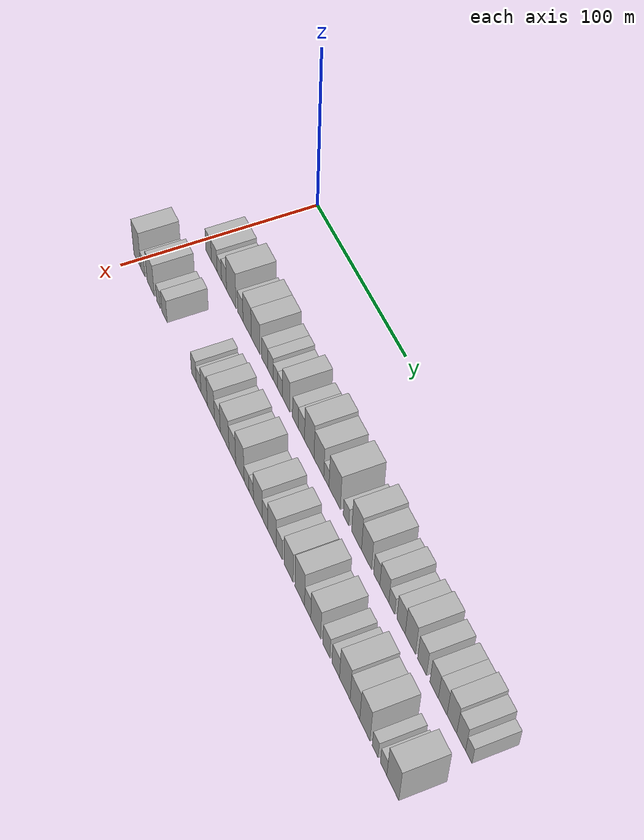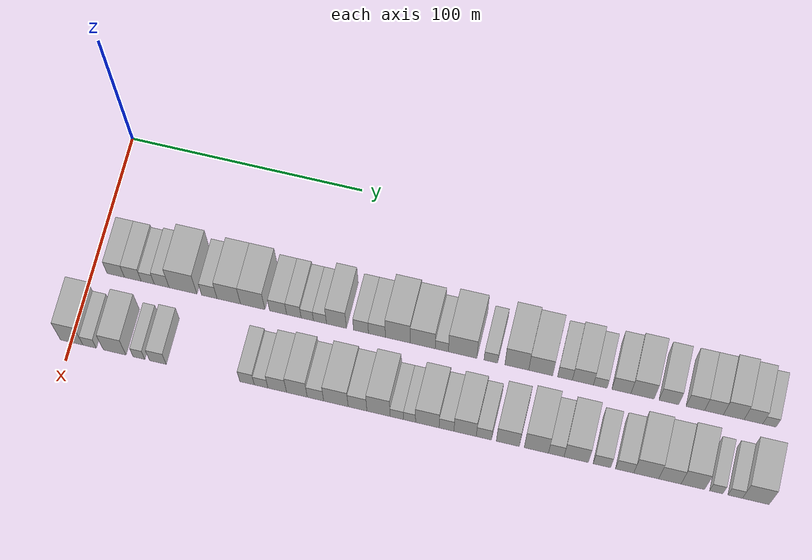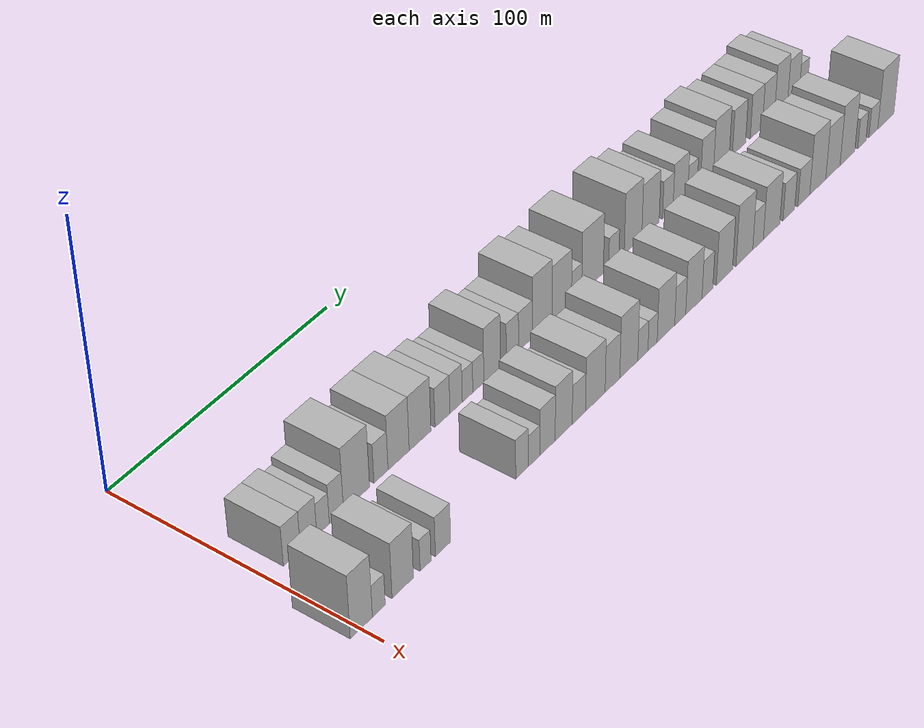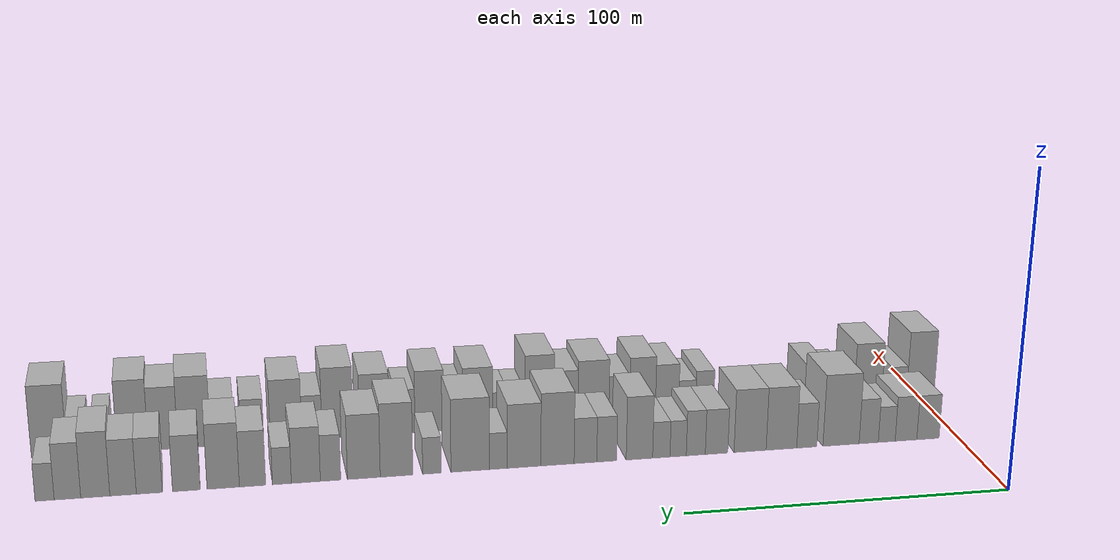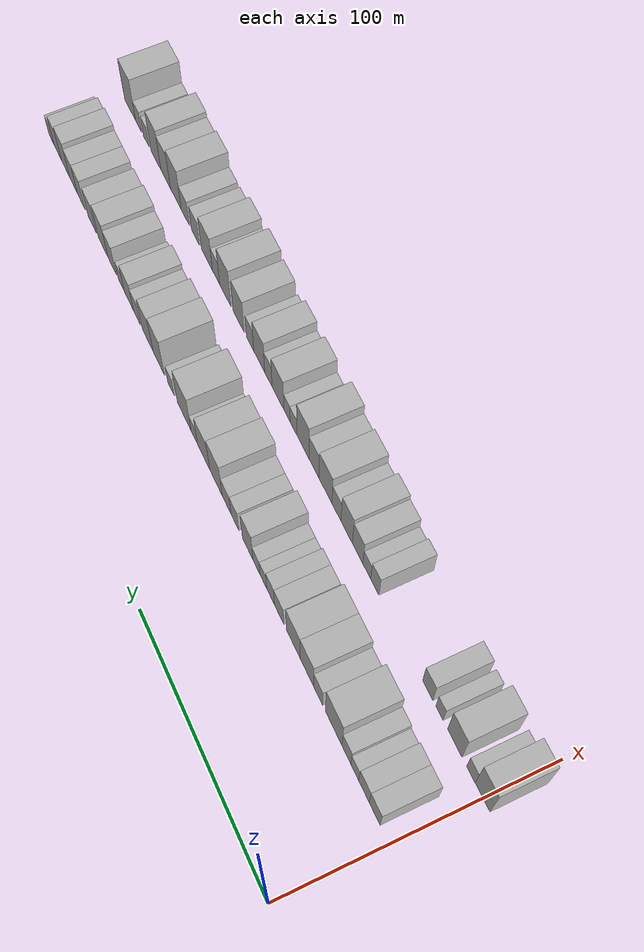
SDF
<sdf version="1.6">
 <world name="default">
  <model name="building_31">
   <static>1</static>
   <pose>50.0000 9.9251 0 0.000000 0.000000 0.000000</pose>
   <link name="link">
    <pose>0 0 7.50 0 0 0</pose>
    <collision name="collision"><geometry><box><size>20.0000 7.4453 15.0000</size></box></geometry></collision>
    <visual name="visual">
     <cast_shadows>0</cast_shadows>
     <geometry><box><size>20.0000 7.4453 15.0000</size></box></geometry>
     <material>
      <script>
       <uri>model://HANNAS_wall/materials/scripts</uri>
       <uri>model://HANNAS_wall/materials/textures</uri>
       <name>vrc/HANNAS_wall</name>
      </script>
     </material>
    </visual>
   </link>
  </model>
  <model name="building_32">
   <static>1</static>
   <pose>50.0000 17.2544 0 0.000000 0.000000 0.000000</pose>
   <link name="link">
    <pose>0 0 7.50 0 0 0</pose>
    <collision name="collision"><geometry><box><size>20.0000 7.2133 15.0000</size></box></geometry></collision>
    <visual name="visual">
     <cast_shadows>0</cast_shadows>
     <geometry><box><size>20.0000 7.2133 15.0000</size></box></geometry>
     <material>
      <script>
       <uri>model://HANNAS_wall/materials/scripts</uri>
       <uri>model://HANNAS_wall/materials/textures</uri>
       <name>vrc/HANNAS_wall</name>
      </script>
     </material>
    </visual>
   </link>
  </model>
  <model name="building_33">
   <static>1</static>
   <pose>50.0000 23.6577 0 0.000000 0.000000 0.000000</pose>
   <link name="link">
    <pose>0 0 6.00 0 0 0</pose>
    <collision name="collision"><geometry><box><size>20.0000 5.5933 12.0000</size></box></geometry></collision>
    <visual name="visual">
     <cast_shadows>0</cast_shadows>
     <geometry><box><size>20.0000 5.5933 12.0000</size></box></geometry>
     <material>
      <script>
       <uri>model://HANNAS_wall/materials/scripts</uri>
       <uri>model://HANNAS_wall/materials/textures</uri>
       <name>vrc/HANNAS_wall</name>
      </script>
     </material>
    </visual>
   </link>
  </model>
  <model name="building_34">
   <static>1</static>
   <pose>50.0000 29.6314 0 0.000000 0.000000 0.000000</pose>
   <link name="link">
    <pose>0 0 7.50 0 0 0</pose>
    <collision name="collision"><geometry><box><size>20.0000 6.3542 15.0000</size></box></geometry></collision>
    <visual name="visual">
     <cast_shadows>0</cast_shadows>
     <geometry><box><size>20.0000 6.3542 15.0000</size></box></geometry>
     <material>
      <script>
       <uri>model://HANNAS_wall/materials/scripts</uri>
       <uri>model://HANNAS_wall/materials/textures</uri>
       <name>vrc/HANNAS_wall</name>
      </script>
     </material>
    </visual>
   </link>
  </model>
  <model name="building_35">
   <static>1</static>
   <pose>50.0000 38.7685 0 0.000000 0.000000 0.000000</pose>
   <link name="link">
    <pose>0 0 12.00 0 0 0</pose>
    <collision name="collision"><geometry><box><size>20.0000 11.9199 24.0000</size></box></geometry></collision>
    <visual name="visual">
     <cast_shadows>0</cast_shadows>
     <geometry><box><size>20.0000 11.9199 24.0000</size></box></geometry>
     <material>
      <script>
       <uri>model://HANNAS_wall/materials/scripts</uri>
       <uri>model://HANNAS_wall/materials/textures</uri>
       <name>vrc/HANNAS_wall</name>
      </script>
     </material>
    </visual>
   </link>
  </model>
  <model name="building_36">
   <static>1</static>
   <pose>50.0000 50.0212 0 0.000000 0.000000 0.000000</pose>
   <link name="link">
    <pose>0 0 7.50 0 0 0</pose>
    <collision name="collision"><geometry><box><size>20.0000 6.5854 15.0000</size></box></geometry></collision>
    <visual name="visual">
     <cast_shadows>0</cast_shadows>
     <geometry><box><size>20.0000 6.5854 15.0000</size></box></geometry>
     <material>
      <script>
       <uri>model://HANNAS_wall/materials/scripts</uri>
       <uri>model://HANNAS_wall/materials/textures</uri>
       <name>vrc/HANNAS_wall</name>
      </script>
     </material>
    </visual>
   </link>
  </model>
  <model name="building_37">
   <static>1</static>
   <pose>50.0000 58.3000 0 0.000000 0.000000 0.000000</pose>
   <link name="link">
    <pose>0 0 10.50 0 0 0</pose>
    <collision name="collision"><geometry><box><size>20.0000 9.9722 21.0000</size></box></geometry></collision>
    <visual name="visual">
     <cast_shadows>0</cast_shadows>
     <geometry><box><size>20.0000 9.9722 21.0000</size></box></geometry>
     <material>
      <script>
       <uri>model://HANNAS_wall/materials/scripts</uri>
       <uri>model://HANNAS_wall/materials/textures</uri>
       <name>vrc/HANNAS_wall</name>
      </script>
     </material>
    </visual>
   </link>
  </model>
  <model name="building_38">
   <static>1</static>
   <pose>50.0000 68.4971 0 0.000000 0.000000 0.000000</pose>
   <link name="link">
    <pose>0 0 10.50 0 0 0</pose>
    <collision name="collision"><geometry><box><size>20.0000 10.4220 21.0000</size></box></geometry></collision>
    <visual name="visual">
     <cast_shadows>0</cast_shadows>
     <geometry><box><size>20.0000 10.4220 21.0000</size></box></geometry>
     <material>
      <script>
       <uri>model://HANNAS_wall/materials/scripts</uri>
       <uri>model://HANNAS_wall/materials/textures</uri>
       <name>vrc/HANNAS_wall</name>
      </script>
     </material>
    </visual>
   </link>
  </model>
  <model name="building_39">
   <static>1</static>
   <pose>50.0000 79.3387 0 0.000000 0.000000 0.000000</pose>
   <link name="link">
    <pose>0 0 7.50 0 0 0</pose>
    <collision name="collision"><geometry><box><size>20.0000 7.2612 15.0000</size></box></geometry></collision>
    <visual name="visual">
     <cast_shadows>0</cast_shadows>
     <geometry><box><size>20.0000 7.2612 15.0000</size></box></geometry>
     <material>
      <script>
       <uri>model://HANNAS_wall/materials/scripts</uri>
       <uri>model://HANNAS_wall/materials/textures</uri>
       <name>vrc/HANNAS_wall</name>
      </script>
     </material>
    </visual>
   </link>
  </model>
  <model name="building_40">
   <static>1</static>
   <pose>50.0000 86.0301 0 0.000000 0.000000 0.000000</pose>
   <link name="link">
    <pose>0 0 7.50 0 0 0</pose>
    <collision name="collision"><geometry><box><size>20.0000 6.1216 15.0000</size></box></geometry></collision>
    <visual name="visual">
     <cast_shadows>0</cast_shadows>
     <geometry><box><size>20.0000 6.1216 15.0000</size></box></geometry>
     <material>
      <script>
       <uri>model://HANNAS_wall/materials/scripts</uri>
       <uri>model://HANNAS_wall/materials/textures</uri>
       <name>vrc/HANNAS_wall</name>
      </script>
     </material>
    </visual>
   </link>
  </model>
  <model name="building_41">
   <static>1</static>
   <pose>50.0000 91.6999 0 0.000000 0.000000 0.000000</pose>
   <link name="link">
    <pose>0 0 6.00 0 0 0</pose>
    <collision name="collision"><geometry><box><size>20.0000 5.2180 12.0000</size></box></geometry></collision>
    <visual name="visual">
     <cast_shadows>0</cast_shadows>
     <geometry><box><size>20.0000 5.2180 12.0000</size></box></geometry>
     <material>
      <script>
       <uri>model://HANNAS_wall/materials/scripts</uri>
       <uri>model://HANNAS_wall/materials/textures</uri>
       <name>vrc/HANNAS_wall</name>
      </script>
     </material>
    </visual>
   </link>
  </model>
  <model name="building_42">
   <static>1</static>
   <pose>50.0000 97.0927 0 0.000000 0.000000 0.000000</pose>
   <link name="link">
    <pose>0 0 6.00 0 0 0</pose>
    <collision name="collision"><geometry><box><size>20.0000 5.5674 12.0000</size></box></geometry></collision>
    <visual name="visual">
     <cast_shadows>0</cast_shadows>
     <geometry><box><size>20.0000 5.5674 12.0000</size></box></geometry>
     <material>
      <script>
       <uri>model://HANNAS_wall/materials/scripts</uri>
       <uri>model://HANNAS_wall/materials/textures</uri>
       <name>vrc/HANNAS_wall</name>
      </script>
     </material>
    </visual>
   </link>
  </model>
  <model name="building_43">
   <static>1</static>
   <pose>50.0000 104.0828 0 0.000000 0.000000 0.000000</pose>
   <link name="link">
    <pose>0 0 10.50 0 0 0</pose>
    <collision name="collision"><geometry><box><size>20.0000 8.4127 21.0000</size></box></geometry></collision>
    <visual name="visual">
     <cast_shadows>0</cast_shadows>
     <geometry><box><size>20.0000 8.4127 21.0000</size></box></geometry>
     <material>
      <script>
       <uri>model://HANNAS_wall/materials/scripts</uri>
       <uri>model://HANNAS_wall/materials/textures</uri>
       <name>vrc/HANNAS_wall</name>
      </script>
     </material>
    </visual>
   </link>
  </model>
  <model name="building_44">
   <static>1</static>
   <pose>50.0000 114.4415 0 0.000000 0.000000 0.000000</pose>
   <link name="link">
    <pose>0 0 7.50 0 0 0</pose>
    <collision name="collision"><geometry><box><size>20.0000 6.3048 15.0000</size></box></geometry></collision>
    <visual name="visual">
     <cast_shadows>0</cast_shadows>
     <geometry><box><size>20.0000 6.3048 15.0000</size></box></geometry>
     <material>
      <script>
       <uri>model://HANNAS_wall/materials/scripts</uri>
       <uri>model://HANNAS_wall/materials/textures</uri>
       <name>vrc/HANNAS_wall</name>
      </script>
     </material>
    </visual>
   </link>
  </model>
  <model name="building_45">
   <static>1</static>
   <pose>50.0000 121.1762 0 0.000000 0.000000 0.000000</pose>
   <link name="link">
    <pose>0 0 7.50 0 0 0</pose>
    <collision name="collision"><geometry><box><size>20.0000 7.1645 15.0000</size></box></geometry></collision>
    <visual name="visual">
     <cast_shadows>0</cast_shadows>
     <geometry><box><size>20.0000 7.1645 15.0000</size></box></geometry>
     <material>
      <script>
       <uri>model://HANNAS_wall/materials/scripts</uri>
       <uri>model://HANNAS_wall/materials/textures</uri>
       <name>vrc/HANNAS_wall</name>
      </script>
     </material>
    </visual>
   </link>
  </model>
  <model name="building_46">
   <static>1</static>
   <pose>50.0000 129.9872 0 0.000000 0.000000 0.000000</pose>
   <link name="link">
    <pose>0 0 12.00 0 0 0</pose>
    <collision name="collision"><geometry><box><size>20.0000 10.4575 24.0000</size></box></geometry></collision>
    <visual name="visual">
     <cast_shadows>0</cast_shadows>
     <geometry><box><size>20.0000 10.4575 24.0000</size></box></geometry>
     <material>
      <script>
       <uri>model://HANNAS_wall/materials/scripts</uri>
       <uri>model://HANNAS_wall/materials/textures</uri>
       <name>vrc/HANNAS_wall</name>
      </script>
     </material>
    </visual>
   </link>
  </model>
  <model name="building_47">
   <static>1</static>
   <pose>50.0000 140.4449 0 0.000000 0.000000 0.000000</pose>
   <link name="link">
    <pose>0 0 10.50 0 0 0</pose>
    <collision name="collision"><geometry><box><size>20.0000 10.4578 21.0000</size></box></geometry></collision>
    <visual name="visual">
     <cast_shadows>0</cast_shadows>
     <geometry><box><size>20.0000 10.4578 21.0000</size></box></geometry>
     <material>
      <script>
       <uri>model://HANNAS_wall/materials/scripts</uri>
       <uri>model://HANNAS_wall/materials/textures</uri>
       <name>vrc/HANNAS_wall</name>
      </script>
     </material>
    </visual>
   </link>
  </model>
  <model name="building_48">
   <static>1</static>
   <pose>50.0000 148.4528 0 0.000000 0.000000 0.000000</pose>
   <link name="link">
    <pose>0 0 6.00 0 0 0</pose>
    <collision name="collision"><geometry><box><size>20.0000 5.5581 12.0000</size></box></geometry></collision>
    <visual name="visual">
     <cast_shadows>0</cast_shadows>
     <geometry><box><size>20.0000 5.5581 12.0000</size></box></geometry>
     <material>
      <script>
       <uri>model://HANNAS_wall/materials/scripts</uri>
       <uri>model://HANNAS_wall/materials/textures</uri>
       <name>vrc/HANNAS_wall</name>
      </script>
     </material>
    </visual>
   </link>
  </model>
  <model name="building_49">
   <static>1</static>
   <pose>50.0000 157.2001 0 0.000000 0.000000 0.000000</pose>
   <link name="link">
    <pose>0 0 12.00 0 0 0</pose>
    <collision name="collision"><geometry><box><size>20.0000 11.9365 24.0000</size></box></geometry></collision>
    <visual name="visual">
     <cast_shadows>0</cast_shadows>
     <geometry><box><size>20.0000 11.9365 24.0000</size></box></geometry>
     <material>
      <script>
       <uri>model://HANNAS_wall/materials/scripts</uri>
       <uri>model://HANNAS_wall/materials/textures</uri>
       <name>vrc/HANNAS_wall</name>
      </script>
     </material>
    </visual>
   </link>
  </model>
  <model name="building_50">
   <static>1</static>
   <pose>50.0000 169.0229 0 0.000000 0.000000 0.000000</pose>
   <link name="link">
    <pose>0 0 6.00 0 0 0</pose>
    <collision name="collision"><geometry><box><size>20.0000 5.7092 12.0000</size></box></geometry></collision>
    <visual name="visual">
     <cast_shadows>0</cast_shadows>
     <geometry><box><size>20.0000 5.7092 12.0000</size></box></geometry>
     <material>
      <script>
       <uri>model://HANNAS_wall/materials/scripts</uri>
       <uri>model://HANNAS_wall/materials/textures</uri>
       <name>vrc/HANNAS_wall</name>
      </script>
     </material>
    </visual>
   </link>
  </model>
  <model name="building_51">
   <static>1</static>
   <pose>50.0000 179.8717 0 0.000000 0.000000 0.000000</pose>
   <link name="link">
    <pose>0 0 12.00 0 0 0</pose>
    <collision name="collision"><geometry><box><size>20.0000 9.9882 24.0000</size></box></geometry></collision>
    <visual name="visual">
     <cast_shadows>0</cast_shadows>
     <geometry><box><size>20.0000 9.9882 24.0000</size></box></geometry>
     <material>
      <script>
       <uri>model://HANNAS_wall/materials/scripts</uri>
       <uri>model://HANNAS_wall/materials/textures</uri>
       <name>vrc/HANNAS_wall</name>
      </script>
     </material>
    </visual>
   </link>
  </model>
  <model name="building_52">
   <static>1</static>
   <pose>50.0000 189.8751 0 0.000000 0.000000 0.000000</pose>
   <link name="link">
    <pose>0 0 10.50 0 0 0</pose>
    <collision name="collision"><geometry><box><size>20.0000 10.0186 21.0000</size></box></geometry></collision>
    <visual name="visual">
     <cast_shadows>0</cast_shadows>
     <geometry><box><size>20.0000 10.0186 21.0000</size></box></geometry>
     <material>
      <script>
       <uri>model://HANNAS_wall/materials/scripts</uri>
       <uri>model://HANNAS_wall/materials/textures</uri>
       <name>vrc/HANNAS_wall</name>
      </script>
     </material>
    </visual>
   </link>
  </model>
  <model name="building_53">
   <static>1</static>
   <pose>50.0000 199.9680 0 0.000000 0.000000 0.000000</pose>
   <link name="link">
    <pose>0 0 7.50 0 0 0</pose>
    <collision name="collision"><geometry><box><size>20.0000 6.1673 15.0000</size></box></geometry></collision>
    <visual name="visual">
     <cast_shadows>0</cast_shadows>
     <geometry><box><size>20.0000 6.1673 15.0000</size></box></geometry>
     <material>
      <script>
       <uri>model://HANNAS_wall/materials/scripts</uri>
       <uri>model://HANNAS_wall/materials/textures</uri>
       <name>vrc/HANNAS_wall</name>
      </script>
     </material>
    </visual>
   </link>
  </model>
  <model name="building_54">
   <static>1</static>
   <pose>50.0000 207.4284 0 0.000000 0.000000 0.000000</pose>
   <link name="link">
    <pose>0 0 9.00 0 0 0</pose>
    <collision name="collision"><geometry><box><size>20.0000 8.7535 18.0000</size></box></geometry></collision>
    <visual name="visual">
     <cast_shadows>0</cast_shadows>
     <geometry><box><size>20.0000 8.7535 18.0000</size></box></geometry>
     <material>
      <script>
       <uri>model://HANNAS_wall/materials/scripts</uri>
       <uri>model://HANNAS_wall/materials/textures</uri>
       <name>vrc/HANNAS_wall</name>
      </script>
     </material>
    </visual>
   </link>
  </model>
  <model name="building_55">
   <static>1</static>
   <pose>50.0000 214.6460 0 0.000000 0.000000 0.000000</pose>
   <link name="link">
    <pose>0 0 6.00 0 0 0</pose>
    <collision name="collision"><geometry><box><size>20.0000 5.6817 12.0000</size></box></geometry></collision>
    <visual name="visual">
     <cast_shadows>0</cast_shadows>
     <geometry><box><size>20.0000 5.6817 12.0000</size></box></geometry>
     <material>
      <script>
       <uri>model://HANNAS_wall/materials/scripts</uri>
       <uri>model://HANNAS_wall/materials/textures</uri>
       <name>vrc/HANNAS_wall</name>
      </script>
     </material>
    </visual>
   </link>
  </model>
  <model name="building_56">
   <static>1</static>
   <pose>50.0000 223.4304 0 0.000000 0.000000 0.000000</pose>
   <link name="link">
    <pose>0 0 9.00 0 0 0</pose>
    <collision name="collision"><geometry><box><size>20.0000 7.8871 18.0000</size></box></geometry></collision>
    <visual name="visual">
     <cast_shadows>0</cast_shadows>
     <geometry><box><size>20.0000 7.8871 18.0000</size></box></geometry>
     <material>
      <script>
       <uri>model://HANNAS_wall/materials/scripts</uri>
       <uri>model://HANNAS_wall/materials/textures</uri>
       <name>vrc/HANNAS_wall</name>
      </script>
     </material>
    </visual>
   </link>
  </model>
  <model name="building_57">
   <static>1</static>
   <pose>50.0000 232.1941 0 0.000000 0.000000 0.000000</pose>
   <link name="link">
    <pose>0 0 10.50 0 0 0</pose>
    <collision name="collision"><geometry><box><size>20.0000 9.6404 21.0000</size></box></geometry></collision>
    <visual name="visual">
     <cast_shadows>0</cast_shadows>
     <geometry><box><size>20.0000 9.6404 21.0000</size></box></geometry>
     <material>
      <script>
       <uri>model://HANNAS_wall/materials/scripts</uri>
       <uri>model://HANNAS_wall/materials/textures</uri>
       <name>vrc/HANNAS_wall</name>
      </script>
     </material>
    </visual>
   </link>
  </model>
  <model name="building_58">
   <static>1</static>
   <pose>50.0000 243.1119 0 0.000000 0.000000 0.000000</pose>
   <link name="link">
    <pose>0 0 9.00 0 0 0</pose>
    <collision name="collision"><geometry><box><size>20.0000 8.1951 18.0000</size></box></geometry></collision>
    <visual name="visual">
     <cast_shadows>0</cast_shadows>
     <geometry><box><size>20.0000 8.1951 18.0000</size></box></geometry>
     <material>
      <script>
       <uri>model://HANNAS_wall/materials/scripts</uri>
       <uri>model://HANNAS_wall/materials/textures</uri>
       <name>vrc/HANNAS_wall</name>
      </script>
     </material>
    </visual>
   </link>
  </model>
  <model name="building_59">
   <static>1</static>
   <pose>50.0000 254.0424 0 0.000000 0.000000 0.000000</pose>
   <link name="link">
    <pose>0 0 9.00 0 0 0</pose>
    <collision name="collision"><geometry><box><size>20.0000 7.6658 18.0000</size></box></geometry></collision>
    <visual name="visual">
     <cast_shadows>0</cast_shadows>
     <geometry><box><size>20.0000 7.6658 18.0000</size></box></geometry>
     <material>
      <script>
       <uri>model://HANNAS_wall/materials/scripts</uri>
       <uri>model://HANNAS_wall/materials/textures</uri>
       <name>vrc/HANNAS_wall</name>
      </script>
     </material>
    </visual>
   </link>
  </model>
  <model name="building_60">
   <static>1</static>
   <pose>50.0000 261.7490 0 0.000000 0.000000 0.000000</pose>
   <link name="link">
    <pose>0 0 9.00 0 0 0</pose>
    <collision name="collision"><geometry><box><size>20.0000 7.7473 18.0000</size></box></geometry></collision>
    <visual name="visual">
     <cast_shadows>0</cast_shadows>
     <geometry><box><size>20.0000 7.7473 18.0000</size></box></geometry>
     <material>
      <script>
       <uri>model://HANNAS_wall/materials/scripts</uri>
       <uri>model://HANNAS_wall/materials/textures</uri>
       <name>vrc/HANNAS_wall</name>
      </script>
     </material>
    </visual>
   </link>
  </model>
  <model name="building_61">
   <static>1</static>
   <pose>50.0000 269.8685 0 0.000000 0.000000 0.000000</pose>
   <link name="link">
    <pose>0 0 10.50 0 0 0</pose>
    <collision name="collision"><geometry><box><size>20.0000 8.4917 21.0000</size></box></geometry></collision>
    <visual name="visual">
     <cast_shadows>0</cast_shadows>
     <geometry><box><size>20.0000 8.4917 21.0000</size></box></geometry>
     <material>
      <script>
       <uri>model://HANNAS_wall/materials/scripts</uri>
       <uri>model://HANNAS_wall/materials/textures</uri>
       <name>vrc/HANNAS_wall</name>
      </script>
     </material>
    </visual>
   </link>
  </model>
  <model name="building_62">
   <static>1</static>
   <pose>50.0000 277.9735 0 0.000000 0.000000 0.000000</pose>
   <link name="link">
    <pose>0 0 9.00 0 0 0</pose>
    <collision name="collision"><geometry><box><size>20.0000 7.7184 18.0000</size></box></geometry></collision>
    <visual name="visual">
     <cast_shadows>0</cast_shadows>
     <geometry><box><size>20.0000 7.7184 18.0000</size></box></geometry>
     <material>
      <script>
       <uri>model://HANNAS_wall/materials/scripts</uri>
       <uri>model://HANNAS_wall/materials/textures</uri>
       <name>vrc/HANNAS_wall</name>
      </script>
     </material>
    </visual>
   </link>
  </model>
  <model name="building_63">
   <static>1</static>
   <pose>50.0000 284.6000 0 0.000000 0.000000 0.000000</pose>
   <link name="link">
    <pose>0 0 6.00 0 0 0</pose>
    <collision name="collision"><geometry><box><size>20.0000 5.5346 12.0000</size></box></geometry></collision>
    <visual name="visual">
     <cast_shadows>0</cast_shadows>
     <geometry><box><size>20.0000 5.5346 12.0000</size></box></geometry>
     <material>
      <script>
       <uri>model://HANNAS_wall/materials/scripts</uri>
       <uri>model://HANNAS_wall/materials/textures</uri>
       <name>vrc/HANNAS_wall</name>
      </script>
     </material>
    </visual>
   </link>
  </model>
  <model name="building_97">
   <static>1</static>
   <pose>82.0000 0.3367 0 0.000000 0.000000 0.000000</pose>
   <link name="link">
    <pose>0 0 12.00 0 0 0</pose>
    <collision name="collision"><geometry><box><size>20.0000 9.6275 24.0000</size></box></geometry></collision>
    <visual name="visual">
     <cast_shadows>0</cast_shadows>
     <geometry><box><size>20.0000 9.6275 24.0000</size></box></geometry>
     <material>
      <script>
       <uri>model://HANNAS_wall/materials/scripts</uri>
       <uri>model://HANNAS_wall/materials/textures</uri>
       <name>vrc/HANNAS_wall</name>
      </script>
     </material>
    </visual>
   </link>
  </model>
  <model name="building_98">
   <static>1</static>
   <pose>82.0000 7.9887 0 0.000000 0.000000 0.000000</pose>
   <link name="link">
    <pose>0 0 6.00 0 0 0</pose>
    <collision name="collision"><geometry><box><size>20.0000 5.6764 12.0000</size></box></geometry></collision>
    <visual name="visual">
     <cast_shadows>0</cast_shadows>
     <geometry><box><size>20.0000 5.6764 12.0000</size></box></geometry>
     <material>
      <script>
       <uri>model://HANNAS_wall/materials/scripts</uri>
       <uri>model://HANNAS_wall/materials/textures</uri>
       <name>vrc/HANNAS_wall</name>
      </script>
     </material>
    </visual>
   </link>
  </model>
  <model name="building_99">
   <static>1</static>
   <pose>82.0000 18.6422 0 0.000000 0.000000 0.000000</pose>
   <link name="link">
    <pose>0 0 10.50 0 0 0</pose>
    <collision name="collision"><geometry><box><size>20.0000 9.6308 21.0000</size></box></geometry></collision>
    <visual name="visual">
     <cast_shadows>0</cast_shadows>
     <geometry><box><size>20.0000 9.6308 21.0000</size></box></geometry>
     <material>
      <script>
       <uri>model://HANNAS_wall/materials/scripts</uri>
       <uri>model://HANNAS_wall/materials/textures</uri>
       <name>vrc/HANNAS_wall</name>
      </script>
     </material>
    </visual>
   </link>
  </model>
  <model name="building_100">
   <static>1</static>
   <pose>82.0000 28.9468 0 0.000000 0.000000 0.000000</pose>
   <link name="link">
    <pose>0 0 6.00 0 0 0</pose>
    <collision name="collision"><geometry><box><size>20.0000 4.9784 12.0000</size></box></geometry></collision>
    <visual name="visual">
     <cast_shadows>0</cast_shadows>
     <geometry><box><size>20.0000 4.9784 12.0000</size></box></geometry>
     <material>
      <script>
       <uri>model://HANNAS_wall/materials/scripts</uri>
       <uri>model://HANNAS_wall/materials/textures</uri>
       <name>vrc/HANNAS_wall</name>
      </script>
     </material>
    </visual>
   </link>
  </model>
  <model name="building_101">
   <static>1</static>
   <pose>82.0000 36.9591 0 0.000000 0.000000 0.000000</pose>
   <link name="link">
    <pose>0 0 7.50 0 0 0</pose>
    <collision name="collision"><geometry><box><size>20.0000 7.0462 15.0000</size></box></geometry></collision>
    <visual name="visual">
     <cast_shadows>0</cast_shadows>
     <geometry><box><size>20.0000 7.0462 15.0000</size></box></geometry>
     <material>
      <script>
       <uri>model://HANNAS_wall/materials/scripts</uri>
       <uri>model://HANNAS_wall/materials/textures</uri>
       <name>vrc/HANNAS_wall</name>
      </script>
     </material>
    </visual>
   </link>
  </model>
  <model name="building_102">
   <static>1</static>
   <pose>82.0000 74.6300 0 0.000000 0.000000 0.000000</pose>
   <link name="link">
    <pose>0 0 7.50 0 0 0</pose>
    <collision name="collision"><geometry><box><size>20.0000 6.0985 15.0000</size></box></geometry></collision>
    <visual name="visual">
     <cast_shadows>0</cast_shadows>
     <geometry><box><size>20.0000 6.0985 15.0000</size></box></geometry>
     <material>
      <script>
       <uri>model://HANNAS_wall/materials/scripts</uri>
       <uri>model://HANNAS_wall/materials/textures</uri>
       <name>vrc/HANNAS_wall</name>
      </script>
     </material>
    </visual>
   </link>
  </model>
  <model name="building_103">
   <static>1</static>
   <pose>82.0000 80.5514 0 0.000000 0.000000 0.000000</pose>
   <link name="link">
    <pose>0 0 6.00 0 0 0</pose>
    <collision name="collision"><geometry><box><size>20.0000 5.7442 12.0000</size></box></geometry></collision>
    <visual name="visual">
     <cast_shadows>0</cast_shadows>
     <geometry><box><size>20.0000 5.7442 12.0000</size></box></geometry>
     <material>
      <script>
       <uri>model://HANNAS_wall/materials/scripts</uri>
       <uri>model://HANNAS_wall/materials/textures</uri>
       <name>vrc/HANNAS_wall</name>
      </script>
     </material>
    </visual>
   </link>
  </model>
  <model name="building_104">
   <static>1</static>
   <pose>82.0000 87.3263 0 0.000000 0.000000 0.000000</pose>
   <link name="link">
    <pose>0 0 9.00 0 0 0</pose>
    <collision name="collision"><geometry><box><size>20.0000 7.8056 18.0000</size></box></geometry></collision>
    <visual name="visual">
     <cast_shadows>0</cast_shadows>
     <geometry><box><size>20.0000 7.8056 18.0000</size></box></geometry>
     <material>
      <script>
       <uri>model://HANNAS_wall/materials/scripts</uri>
       <uri>model://HANNAS_wall/materials/textures</uri>
       <name>vrc/HANNAS_wall</name>
      </script>
     </material>
    </visual>
   </link>
  </model>
  <model name="building_105">
   <static>1</static>
   <pose>82.0000 95.5664 0 0.000000 0.000000 0.000000</pose>
   <link name="link">
    <pose>0 0 10.50 0 0 0</pose>
    <collision name="collision"><geometry><box><size>20.0000 8.6746 21.0000</size></box></geometry></collision>
    <visual name="visual">
     <cast_shadows>0</cast_shadows>
     <geometry><box><size>20.0000 8.6746 21.0000</size></box></geometry>
     <material>
      <script>
       <uri>model://HANNAS_wall/materials/scripts</uri>
       <uri>model://HANNAS_wall/materials/textures</uri>
       <name>vrc/HANNAS_wall</name>
      </script>
     </material>
    </visual>
   </link>
  </model>
  <model name="building_106">
   <static>1</static>
   <pose>82.0000 103.3387 0 0.000000 0.000000 0.000000</pose>
   <link name="link">
    <pose>0 0 7.50 0 0 0</pose>
    <collision name="collision"><geometry><box><size>20.0000 6.8700 15.0000</size></box></geometry></collision>
    <visual name="visual">
     <cast_shadows>0</cast_shadows>
     <geometry><box><size>20.0000 6.8700 15.0000</size></box></geometry>
     <material>
      <script>
       <uri>model://HANNAS_wall/materials/scripts</uri>
       <uri>model://HANNAS_wall/materials/textures</uri>
       <name>vrc/HANNAS_wall</name>
      </script>
     </material>
    </visual>
   </link>
  </model>
  <model name="building_107">
   <static>1</static>
   <pose>82.0000 111.8982 0 0.000000 0.000000 0.000000</pose>
   <link name="link">
    <pose>0 0 10.50 0 0 0</pose>
    <collision name="collision"><geometry><box><size>20.0000 10.2490 21.0000</size></box></geometry></collision>
    <visual name="visual">
     <cast_shadows>0</cast_shadows>
     <geometry><box><size>20.0000 10.2490 21.0000</size></box></geometry>
     <material>
      <script>
       <uri>model://HANNAS_wall/materials/scripts</uri>
       <uri>model://HANNAS_wall/materials/textures</uri>
       <name>vrc/HANNAS_wall</name>
      </script>
     </material>
    </visual>
   </link>
  </model>
  <model name="building_108">
   <static>1</static>
   <pose>82.0000 120.9257 0 0.000000 0.000000 0.000000</pose>
   <link name="link">
    <pose>0 0 9.00 0 0 0</pose>
    <collision name="collision"><geometry><box><size>20.0000 7.8059 18.0000</size></box></geometry></collision>
    <visual name="visual">
     <cast_shadows>0</cast_shadows>
     <geometry><box><size>20.0000 7.8059 18.0000</size></box></geometry>
     <material>
      <script>
       <uri>model://HANNAS_wall/materials/scripts</uri>
       <uri>model://HANNAS_wall/materials/textures</uri>
       <name>vrc/HANNAS_wall</name>
      </script>
     </material>
    </visual>
   </link>
  </model>
  <model name="building_109">
   <static>1</static>
   <pose>82.0000 129.6776 0 0.000000 0.000000 0.000000</pose>
   <link name="link">
    <pose>0 0 12.00 0 0 0</pose>
    <collision name="collision"><geometry><box><size>20.0000 9.6979 24.0000</size></box></geometry></collision>
    <visual name="visual">
     <cast_shadows>0</cast_shadows>
     <geometry><box><size>20.0000 9.6979 24.0000</size></box></geometry>
     <material>
      <script>
       <uri>model://HANNAS_wall/materials/scripts</uri>
       <uri>model://HANNAS_wall/materials/textures</uri>
       <name>vrc/HANNAS_wall</name>
      </script>
     </material>
    </visual>
   </link>
  </model>
  <model name="building_110">
   <static>1</static>
   <pose>82.0000 137.2924 0 0.000000 0.000000 0.000000</pose>
   <link name="link">
    <pose>0 0 6.00 0 0 0</pose>
    <collision name="collision"><geometry><box><size>20.0000 5.5319 12.0000</size></box></geometry></collision>
    <visual name="visual">
     <cast_shadows>0</cast_shadows>
     <geometry><box><size>20.0000 5.5319 12.0000</size></box></geometry>
     <material>
      <script>
       <uri>model://HANNAS_wall/materials/scripts</uri>
       <uri>model://HANNAS_wall/materials/textures</uri>
       <name>vrc/HANNAS_wall</name>
      </script>
     </material>
    </visual>
   </link>
  </model>
  <model name="building_111">
   <static>1</static>
   <pose>82.0000 142.5686 0 0.000000 0.000000 0.000000</pose>
   <link name="link">
    <pose>0 0 6.00 0 0 0</pose>
    <collision name="collision"><geometry><box><size>20.0000 5.0205 12.0000</size></box></geometry></collision>
    <visual name="visual">
     <cast_shadows>0</cast_shadows>
     <geometry><box><size>20.0000 5.0205 12.0000</size></box></geometry>
     <material>
      <script>
       <uri>model://HANNAS_wall/materials/scripts</uri>
       <uri>model://HANNAS_wall/materials/textures</uri>
       <name>vrc/HANNAS_wall</name>
      </script>
     </material>
    </visual>
   </link>
  </model>
  <model name="building_112">
   <static>1</static>
   <pose>82.0000 149.9698 0 0.000000 0.000000 0.000000</pose>
   <link name="link">
    <pose>0 0 10.50 0 0 0</pose>
    <collision name="collision"><geometry><box><size>20.0000 9.7818 21.0000</size></box></geometry></collision>
    <visual name="visual">
     <cast_shadows>0</cast_shadows>
     <geometry><box><size>20.0000 9.7818 21.0000</size></box></geometry>
     <material>
      <script>
       <uri>model://HANNAS_wall/materials/scripts</uri>
       <uri>model://HANNAS_wall/materials/textures</uri>
       <name>vrc/HANNAS_wall</name>
      </script>
     </material>
    </visual>
   </link>
  </model>
  <model name="building_113">
   <static>1</static>
   <pose>82.0000 157.9517 0 0.000000 0.000000 0.000000</pose>
   <link name="link">
    <pose>0 0 7.50 0 0 0</pose>
    <collision name="collision"><geometry><box><size>20.0000 6.1820 15.0000</size></box></geometry></collision>
    <visual name="visual">
     <cast_shadows>0</cast_shadows>
     <geometry><box><size>20.0000 6.1820 15.0000</size></box></geometry>
     <material>
      <script>
       <uri>model://HANNAS_wall/materials/scripts</uri>
       <uri>model://HANNAS_wall/materials/textures</uri>
       <name>vrc/HANNAS_wall</name>
      </script>
     </material>
    </visual>
   </link>
  </model>
  <model name="building_114">
   <static>1</static>
   <pose>82.0000 165.6702 0 0.000000 0.000000 0.000000</pose>
   <link name="link">
    <pose>0 0 10.50 0 0 0</pose>
    <collision name="collision"><geometry><box><size>20.0000 9.2550 21.0000</size></box></geometry></collision>
    <visual name="visual">
     <cast_shadows>0</cast_shadows>
     <geometry><box><size>20.0000 9.2550 21.0000</size></box></geometry>
     <material>
      <script>
       <uri>model://HANNAS_wall/materials/scripts</uri>
       <uri>model://HANNAS_wall/materials/textures</uri>
       <name>vrc/HANNAS_wall</name>
      </script>
     </material>
    </visual>
   </link>
  </model>
  <model name="building_115">
   <static>1</static>
   <pose>82.0000 173.4402 0 0.000000 0.000000 0.000000</pose>
   <link name="link">
    <pose>0 0 7.50 0 0 0</pose>
    <collision name="collision"><geometry><box><size>20.0000 6.2849 15.0000</size></box></geometry></collision>
    <visual name="visual">
     <cast_shadows>0</cast_shadows>
     <geometry><box><size>20.0000 6.2849 15.0000</size></box></geometry>
     <material>
      <script>
       <uri>model://HANNAS_wall/materials/scripts</uri>
       <uri>model://HANNAS_wall/materials/textures</uri>
       <name>vrc/HANNAS_wall</name>
      </script>
     </material>
    </visual>
   </link>
  </model>
  <model name="building_116">
   <static>1</static>
   <pose>82.0000 183.3391 0 0.000000 0.000000 0.000000</pose>
   <link name="link">
    <pose>0 0 10.50 0 0 0</pose>
    <collision name="collision"><geometry><box><size>20.0000 9.5129 21.0000</size></box></geometry></collision>
    <visual name="visual">
     <cast_shadows>0</cast_shadows>
     <geometry><box><size>20.0000 9.5129 21.0000</size></box></geometry>
     <material>
      <script>
       <uri>model://HANNAS_wall/materials/scripts</uri>
       <uri>model://HANNAS_wall/materials/textures</uri>
       <name>vrc/HANNAS_wall</name>
      </script>
     </material>
    </visual>
   </link>
  </model>
  <model name="building_117">
   <static>1</static>
   <pose>82.0000 195.0839 0 0.000000 0.000000 0.000000</pose>
   <link name="link">
    <pose>0 0 12.00 0 0 0</pose>
    <collision name="collision"><geometry><box><size>20.0000 9.9767 24.0000</size></box></geometry></collision>
    <visual name="visual">
     <cast_shadows>0</cast_shadows>
     <geometry><box><size>20.0000 9.9767 24.0000</size></box></geometry>
     <material>
      <script>
       <uri>model://HANNAS_wall/materials/scripts</uri>
       <uri>model://HANNAS_wall/materials/textures</uri>
       <name>vrc/HANNAS_wall</name>
      </script>
     </material>
    </visual>
   </link>
  </model>
  <model name="building_118">
   <static>1</static>
   <pose>82.0000 203.2725 0 0.000000 0.000000 0.000000</pose>
   <link name="link">
    <pose>0 0 7.50 0 0 0</pose>
    <collision name="collision"><geometry><box><size>20.0000 6.4006 15.0000</size></box></geometry></collision>
    <visual name="visual">
     <cast_shadows>0</cast_shadows>
     <geometry><box><size>20.0000 6.4006 15.0000</size></box></geometry>
     <material>
      <script>
       <uri>model://HANNAS_wall/materials/scripts</uri>
       <uri>model://HANNAS_wall/materials/textures</uri>
       <name>vrc/HANNAS_wall</name>
      </script>
     </material>
    </visual>
   </link>
  </model>
  <model name="building_119">
   <static>1</static>
   <pose>82.0000 211.4759 0 0.000000 0.000000 0.000000</pose>
   <link name="link">
    <pose>0 0 10.50 0 0 0</pose>
    <collision name="collision"><geometry><box><size>20.0000 10.0063 21.0000</size></box></geometry></collision>
    <visual name="visual">
     <cast_shadows>0</cast_shadows>
     <geometry><box><size>20.0000 10.0063 21.0000</size></box></geometry>
     <material>
      <script>
       <uri>model://HANNAS_wall/materials/scripts</uri>
       <uri>model://HANNAS_wall/materials/textures</uri>
       <name>vrc/HANNAS_wall</name>
      </script>
     </material>
    </visual>
   </link>
  </model>
  <model name="building_120">
   <static>1</static>
   <pose>82.0000 222.0751 0 0.000000 0.000000 0.000000</pose>
   <link name="link">
    <pose>0 0 7.50 0 0 0</pose>
    <collision name="collision"><geometry><box><size>20.0000 7.1920 15.0000</size></box></geometry></collision>
    <visual name="visual">
     <cast_shadows>0</cast_shadows>
     <geometry><box><size>20.0000 7.1920 15.0000</size></box></geometry>
     <material>
      <script>
       <uri>model://HANNAS_wall/materials/scripts</uri>
       <uri>model://HANNAS_wall/materials/textures</uri>
       <name>vrc/HANNAS_wall</name>
      </script>
     </material>
    </visual>
   </link>
  </model>
  <model name="building_121">
   <static>1</static>
   <pose>82.0000 231.4045 0 0.000000 0.000000 0.000000</pose>
   <link name="link">
    <pose>0 0 7.50 0 0 0</pose>
    <collision name="collision"><geometry><box><size>20.0000 7.4668 15.0000</size></box></geometry></collision>
    <visual name="visual">
     <cast_shadows>0</cast_shadows>
     <geometry><box><size>20.0000 7.4668 15.0000</size></box></geometry>
     <material>
      <script>
       <uri>model://HANNAS_wall/materials/scripts</uri>
       <uri>model://HANNAS_wall/materials/textures</uri>
       <name>vrc/HANNAS_wall</name>
      </script>
     </material>
    </visual>
   </link>
  </model>
  <model name="building_122">
   <static>1</static>
   <pose>82.0000 240.2431 0 0.000000 0.000000 0.000000</pose>
   <link name="link">
    <pose>0 0 12.00 0 0 0</pose>
    <collision name="collision"><geometry><box><size>20.0000 10.2103 24.0000</size></box></geometry></collision>
    <visual name="visual">
     <cast_shadows>0</cast_shadows>
     <geometry><box><size>20.0000 10.2103 24.0000</size></box></geometry>
     <material>
      <script>
       <uri>model://HANNAS_wall/materials/scripts</uri>
       <uri>model://HANNAS_wall/materials/textures</uri>
       <name>vrc/HANNAS_wall</name>
      </script>
     </material>
    </visual>
   </link>
  </model>
  <model name="building_123">
   <static>1</static>
   <pose>82.0000 249.9408 0 0.000000 0.000000 0.000000</pose>
   <link name="link">
    <pose>0 0 10.50 0 0 0</pose>
    <collision name="collision"><geometry><box><size>20.0000 9.1853 21.0000</size></box></geometry></collision>
    <visual name="visual">
     <cast_shadows>0</cast_shadows>
     <geometry><box><size>20.0000 9.1853 21.0000</size></box></geometry>
     <material>
      <script>
       <uri>model://HANNAS_wall/materials/scripts</uri>
       <uri>model://HANNAS_wall/materials/textures</uri>
       <name>vrc/HANNAS_wall</name>
      </script>
     </material>
    </visual>
   </link>
  </model>
  <model name="building_124">
   <static>1</static>
   <pose>82.0000 259.3489 0 0.000000 0.000000 0.000000</pose>
   <link name="link">
    <pose>0 0 12.00 0 0 0</pose>
    <collision name="collision"><geometry><box><size>20.0000 9.6308 24.0000</size></box></geometry></collision>
    <visual name="visual">
     <cast_shadows>0</cast_shadows>
     <geometry><box><size>20.0000 9.6308 24.0000</size></box></geometry>
     <material>
      <script>
       <uri>model://HANNAS_wall/materials/scripts</uri>
       <uri>model://HANNAS_wall/materials/textures</uri>
       <name>vrc/HANNAS_wall</name>
      </script>
     </material>
    </visual>
   </link>
  </model>
  <model name="building_125">
   <static>1</static>
   <pose>82.0000 268.8821 0 0.000000 0.000000 0.000000</pose>
   <link name="link">
    <pose>0 0 6.00 0 0 0</pose>
    <collision name="collision"><geometry><box><size>20.0000 5.4355 12.0000</size></box></geometry></collision>
    <visual name="visual">
     <cast_shadows>0</cast_shadows>
     <geometry><box><size>20.0000 5.4355 12.0000</size></box></geometry>
     <material>
      <script>
       <uri>model://HANNAS_wall/materials/scripts</uri>
       <uri>model://HANNAS_wall/materials/textures</uri>
       <name>vrc/HANNAS_wall</name>
      </script>
     </material>
    </visual>
   </link>
  </model>
  <model name="building_126">
   <static>1</static>
   <pose>82.0000 276.5596 0 0.000000 0.000000 0.000000</pose>
   <link name="link">
    <pose>0 0 6.00 0 0 0</pose>
    <collision name="collision"><geometry><box><size>20.0000 5.9195 12.0000</size></box></geometry></collision>
    <visual name="visual">
     <cast_shadows>0</cast_shadows>
     <geometry><box><size>20.0000 5.9195 12.0000</size></box></geometry>
     <material>
      <script>
       <uri>model://HANNAS_wall/materials/scripts</uri>
       <uri>model://HANNAS_wall/materials/textures</uri>
       <name>vrc/HANNAS_wall</name>
      </script>
     </material>
    </visual>
   </link>
  </model>
  <model name="building_127">
   <static>1</static>
   <pose>82.0000 284.9446 0 0.000000 0.000000 0.000000</pose>
   <link name="link">
    <pose>0 0 12.00 0 0 0</pose>
    <collision name="collision"><geometry><box><size>20.0000 10.8505 24.0000</size></box></geometry></collision>
    <visual name="visual">
     <cast_shadows>0</cast_shadows>
     <geometry><box><size>20.0000 10.8505 24.0000</size></box></geometry>
     <material>
      <script>
       <uri>model://HANNAS_wall/materials/scripts</uri>
       <uri>model://HANNAS_wall/materials/textures</uri>
       <name>vrc/HANNAS_wall</name>
      </script>
     </material>
    </visual>
   </link>
  </model>
 </world>
</sdf>
